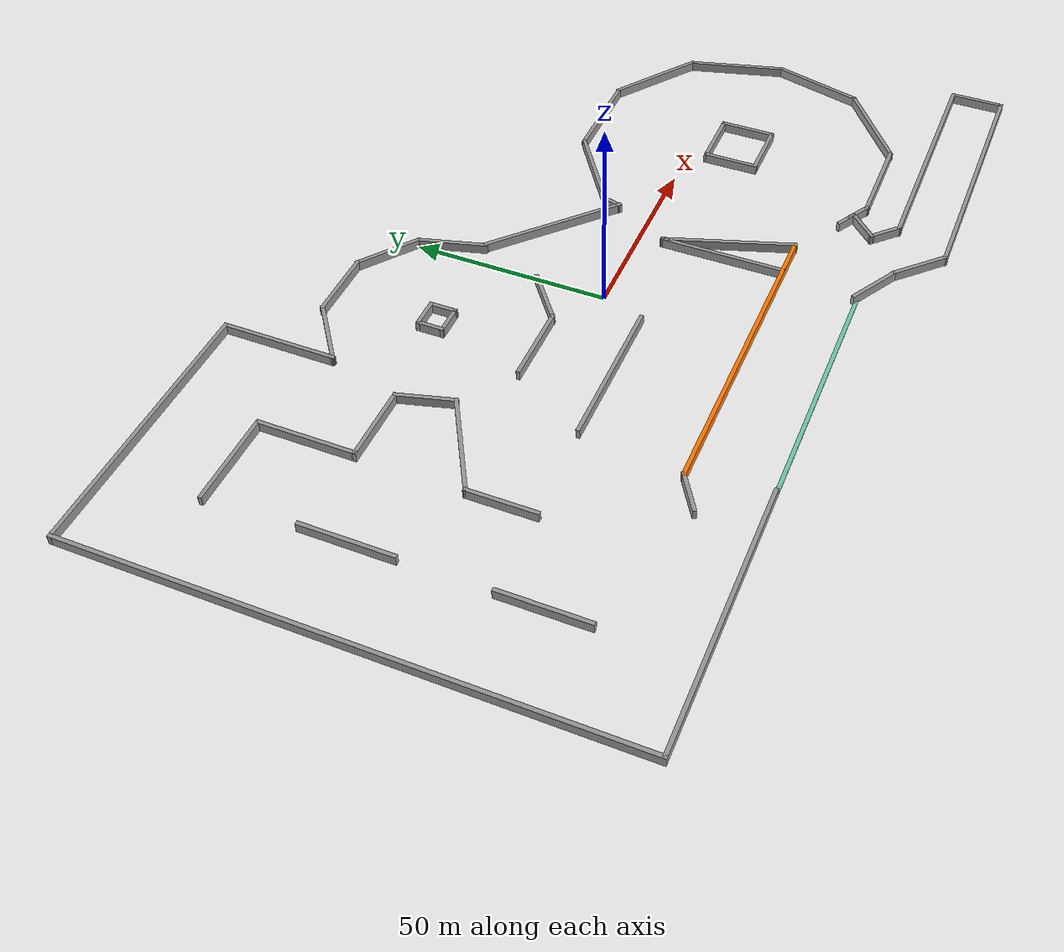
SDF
<?xml version='1.0'?>
<sdf version='1.6'>
  <model name='TestFloorPlan'>
    <pose frame=''>-0.169006 2.27396 0 0 -0 0</pose>
    <link name='Wall_102'>
      <collision name='Wall_102_Collision'>
        <geometry>
          <box>
            <size>66.6 1 0.5</size>
          </box>
        </geometry>
        <pose frame=''>0 0 0.25 0 -0 0</pose>
      </collision>
      <visual name='Wall_102_Visual'>
        <pose frame=''>0 0 0.25 0 -0 0</pose>
        <geometry>
          <box>
            <size>66.6 1 0.5</size>
          </box>
        </geometry>
        <material>
          <script>
            <uri>file://media/materials/scripts/gazebo.material</uri>
            <name>Gazebo/Grey</name>
          </script>
          <ambient>0.435294 0.796078 0.67451 1</ambient>
        </material>
        <meta>
          <layer>0</layer>
        </meta>
      </visual>
      <pose frame=''>-11.036 -59.429 0 0 -0 0</pose>
    </link>
    <link name='Wall_24'>
      <collision name='Wall_24_Collision'>
        <geometry>
          <box>
            <size>11.0669 1 2.5</size>
          </box>
        </geometry>
        <pose frame=''>0 0 1.25 0 -0 0</pose>
      </collision>
      <visual name='Wall_24_Visual'>
        <pose frame=''>0 0 1.25 0 -0 0</pose>
        <geometry>
          <box>
            <size>11.0669 1 2.5</size>
          </box>
        </geometry>
        <material>
          <script>
            <uri>file://media/materials/scripts/gazebo.material</uri>
            <name>Gazebo/Grey</name>
          </script>
          <ambient>1 1 1 1</ambient>
        </material>
        <meta>
          <layer>0</layer>
        </meta>
      </visual>
      <pose frame=''>-51.2449 -42.3683 0 0 -0 0.564552</pose>
    </link>
    <link name='Wall_25'>
      <collision name='Wall_25_Collision'>
        <geometry>
          <box>
            <size>82.0421 1 2.5</size>
          </box>
        </geometry>
        <pose frame=''>0 0 1.25 0 -0 0</pose>
      </collision>
      <visual name='Wall_25_Visual'>
        <pose frame=''>0 0 1.25 0 -0 0</pose>
        <geometry>
          <box>
            <size>82.0421 1 2.5</size>
          </box>
        </geometry>
        <material>
          <script>
            <uri>file://media/materials/scripts/gazebo.material</uri>
            <name>Gazebo/Grey</name>
          </script>
          <ambient>0.996078 0.47451 0.0196078 1</ambient>
        </material>
        <meta>
          <layer>0</layer>
        </meta>
      </visual>
      <pose frame=''>-6.41622 -39.9302 0 0 -0 -0.006292</pose>
    </link>
    <link name='Wall_27'>
      <collision name='Wall_27_Collision'>
        <geometry>
          <box>
            <size>32.3899 1 2.5</size>
          </box>
        </geometry>
        <pose frame=''>0 0 1.25 0 -0 0</pose>
      </collision>
      <visual name='Wall_27_Visual'>
        <pose frame=''>0 0 1.25 0 -0 0</pose>
        <geometry>
          <box>
            <size>32.3899 1 2.5</size>
          </box>
        </geometry>
        <material>
          <script>
            <uri>file://media/materials/scripts/gazebo.material</uri>
            <name>Gazebo/Grey</name>
          </script>
          <ambient>1 1 1 1</ambient>
        </material>
        <meta>
          <layer>0</layer>
        </meta>
      </visual>
      <pose frame=''>23.7669 -24.3601 0 0 -0 1.57079</pose>
    </link>
    <link name='Wall_29'>
      <collision name='Wall_29_Collision'>
        <geometry>
          <box>
            <size>39.8504 1 2.5</size>
          </box>
        </geometry>
        <pose frame=''>0 0 1.25 0 -0 0</pose>
      </collision>
      <visual name='Wall_29_Visual'>
        <pose frame=''>0 0 1.25 0 -0 0</pose>
        <geometry>
          <box>
            <size>39.8504 1 2.5</size>
          </box>
        </geometry>
        <material>
          <script>
            <uri>file://media/materials/scripts/gazebo.material</uri>
            <name>Gazebo/Grey</name>
          </script>
          <ambient>1 1 1 1</ambient>
        </material>
        <meta>
          <layer>0</layer>
        </meta>
      </visual>
      <pose frame=''>-24.237 -13.787 0 0 -0 0</pose>
    </link>
    <link name='Wall_32'>
      <collision name='Wall_32_Collision'>
        <geometry>
          <box>
            <size>22.3496 1 2.5</size>
          </box>
        </geometry>
        <pose frame=''>0 0 1.25 0 -0 0</pose>
      </collision>
      <visual name='Wall_32_Visual'>
        <pose frame=''>0 0 1.25 0 -0 0</pose>
        <geometry>
          <box>
            <size>22.3496 1 2.5</size>
          </box>
        </geometry>
        <material>
          <script>
            <uri>file://media/materials/scripts/gazebo.material</uri>
            <name>Gazebo/Grey</name>
          </script>
          <ambient>1 1 1 1</ambient>
        </material>
        <meta>
          <layer>0</layer>
        </meta>
      </visual>
      <pose frame=''>-89.992 -25.493 0 0 -0 -1.5708</pose>
    </link>
    <link name='Wall_35'>
      <collision name='Wall_35_Collision'>
        <geometry>
          <box>
            <size>14.8505 1 2.5</size>
          </box>
        </geometry>
        <pose frame=''>0 0 1.25 0 -0 0</pose>
      </collision>
      <visual name='Wall_35_Visual'>
        <pose frame=''>0 0 1.25 0 -0 0</pose>
        <geometry>
          <box>
            <size>14.8505 1 2.5</size>
          </box>
        </geometry>
        <material>
          <script>
            <uri>file://media/materials/scripts/gazebo.material</uri>
            <name>Gazebo/Grey</name>
          </script>
          <ambient>1 1 1 1</ambient>
        </material>
        <meta>
          <layer>0</layer>
        </meta>
      </visual>
      <pose frame=''>27.3015 -62.2685 0 0 -0 -0.523579</pose>
    </link>
    <link name='Wall_36'>
      <collision name='Wall_36_Collision'>
        <geometry>
          <box>
            <size>15.5741 1 2.5</size>
          </box>
        </geometry>
        <pose frame=''>0 0 1.25 0 -0 0</pose>
      </collision>
      <visual name='Wall_36_Visual'>
        <pose frame=''>0 0 1.25 0 -0 0</pose>
        <geometry>
          <box>
            <size>15.5741 1 2.5</size>
          </box>
        </geometry>
        <material>
          <script>
            <uri>file://media/materials/scripts/gazebo.material</uri>
            <name>Gazebo/Grey</name>
          </script>
          <ambient>1 1 1 1</ambient>
        </material>
        <meta>
          <layer>0</layer>
        </meta>
      </visual>
      <pose frame=''>38.4425 -70.893 0 0 -0 -0.787193</pose>
    </link>
    <link name='Wall_37'>
      <collision name='Wall_37_Collision'>
        <geometry>
          <box>
            <size>69.5998 1 2.5</size>
          </box>
        </geometry>
        <pose frame=''>0 0 1.25 0 -0 0</pose>
      </collision>
      <visual name='Wall_37_Visual'>
        <pose frame=''>0 0 1.25 0 -0 0</pose>
        <geometry>
          <box>
            <size>69.5998 1 2.5</size>
          </box>
        </geometry>
        <material>
          <script>
            <uri>file://media/materials/scripts/gazebo.material</uri>
            <name>Gazebo/Grey</name>
          </script>
          <ambient>1 1 1 1</ambient>
        </material>
        <meta>
          <layer>0</layer>
        </meta>
      </visual>
      <pose frame=''>77.886 -76.055 0 0 -0 0</pose>
    </link>
    <link name='Wall_38'>
      <collision name='Wall_38_Collision'>
        <geometry>
          <box>
            <size>14.35 1 2.5</size>
          </box>
        </geometry>
        <pose frame=''>0 0 1.25 0 -0 0</pose>
      </collision>
      <visual name='Wall_38_Visual'>
        <pose frame=''>0 0 1.25 0 -0 0</pose>
        <geometry>
          <box>
            <size>14.35 1 2.5</size>
          </box>
        </geometry>
        <material>
          <script>
            <uri>file://media/materials/scripts/gazebo.material</uri>
            <name>Gazebo/Grey</name>
          </script>
          <ambient>1 1 1 1</ambient>
        </material>
        <meta>
          <layer>0</layer>
        </meta>
      </visual>
      <pose frame=''>112.186 -69.38 0 0 -0 1.5708</pose>
    </link>
    <link name='Wall_39'>
      <collision name='Wall_39_Collision'>
        <geometry>
          <box>
            <size>62.85 1 2.5</size>
          </box>
        </geometry>
        <pose frame=''>0 0 1.25 0 -0 0</pose>
      </collision>
      <visual name='Wall_39_Visual'>
        <pose frame=''>0 0 1.25 0 -0 0</pose>
        <geometry>
          <box>
            <size>62.85 1 2.5</size>
          </box>
        </geometry>
        <material>
          <script>
            <uri>file://media/materials/scripts/gazebo.material</uri>
            <name>Gazebo/Grey</name>
          </script>
          <ambient>1 1 1 1</ambient>
        </material>
        <meta>
          <layer>0</layer>
        </meta>
      </visual>
      <pose frame=''>81.261 -62.705 0 0 -0 3.14159</pose>
    </link>
    <link name='Wall_40'>
      <collision name='Wall_40_Collision'>
        <geometry>
          <box>
            <size>9.09991 1 2.5</size>
          </box>
        </geometry>
        <pose frame=''>0 0 1.25 0 -0 0</pose>
      </collision>
      <visual name='Wall_40_Visual'>
        <pose frame=''>0 0 1.25 0 -0 0</pose>
        <geometry>
          <box>
            <size>9.09991 1 2.5</size>
          </box>
        </geometry>
        <material>
          <script>
            <uri>file://media/materials/scripts/gazebo.material</uri>
            <name>Gazebo/Grey</name>
          </script>
          <ambient>1 1 1 1</ambient>
        </material>
        <meta>
          <layer>0</layer>
        </meta>
      </visual>
      <pose frame=''>47.472 -59.8415 0 0 -0 2.35628</pose>
    </link>
    <link name='Wall_41'>
      <collision name='Wall_41_Collision'>
        <geometry>
          <box>
            <size>9.85015 1 2.5</size>
          </box>
        </geometry>
        <pose frame=''>0 0 1.25 0 -0 0</pose>
      </collision>
      <visual name='Wall_41_Visual'>
        <pose frame=''>0 0 1.25 0 -0 0</pose>
        <geometry>
          <box>
            <size>9.85015 1 2.5</size>
          </box>
        </geometry>
        <material>
          <script>
            <uri>file://media/materials/scripts/gazebo.material</uri>
            <name>Gazebo/Grey</name>
          </script>
          <ambient>1 1 1 1</ambient>
        </material>
        <meta>
          <layer>0</layer>
        </meta>
      </visual>
      <pose frame=''>47.737 -53.849 0 0 -0 0.785398</pose>
    </link>
    <link name='Wall_42'>
      <collision name='Wall_42_Collision'>
        <geometry>
          <box>
            <size>6.1001 1 2.5</size>
          </box>
        </geometry>
        <pose frame=''>0 0 1.25 0 -0 0</pose>
      </collision>
      <visual name='Wall_42_Visual'>
        <pose frame=''>0 0 1.25 0 -0 0</pose>
        <geometry>
          <box>
            <size>6.1001 1 2.5</size>
          </box>
        </geometry>
        <material>
          <script>
            <uri>file://media/materials/scripts/gazebo.material</uri>
            <name>Gazebo/Grey</name>
          </script>
          <ambient>1 1 1 1</ambient>
        </material>
        <meta>
          <layer>0</layer>
        </meta>
      </visual>
      <pose frame=''>48.6575 -49.445 0 0 -0 2.61802</pose>
    </link>
    <link name='Wall_44'>
      <collision name='Wall_44_Collision'>
        <geometry>
          <box>
            <size>34.1717 1 2.5</size>
          </box>
        </geometry>
        <pose frame=''>0 0 1.25 0 -0 0</pose>
      </collision>
      <visual name='Wall_44_Visual'>
        <pose frame=''>0 0 1.25 0 -0 0</pose>
        <geometry>
          <box>
            <size>34.1717 1 2.5</size>
          </box>
        </geometry>
        <material>
          <script>
            <uri>file://media/materials/scripts/gazebo.material</uri>
            <name>Gazebo/Grey</name>
          </script>
          <ambient>1 1 1 1</ambient>
        </material>
        <meta>
          <layer>0</layer>
        </meta>
      </visual>
      <pose frame=''>28.9355 -24.465 0 0 -0 -1.2539</pose>
    </link>
    <link name='Wall_49'>
      <collision name='Wall_49_Collision'>
        <geometry>
          <box>
            <size>15.85 1 2.5</size>
          </box>
        </geometry>
        <pose frame=''>0 0 1.25 0 -0 0</pose>
      </collision>
      <visual name='Wall_49_Visual'>
        <pose frame=''>0 0 1.25 0 -0 0</pose>
        <geometry>
          <box>
            <size>15.85 1 2.5</size>
          </box>
        </geometry>
        <material>
          <script>
            <uri>file://media/materials/scripts/gazebo.material</uri>
            <name>Gazebo/Grey</name>
          </script>
          <ambient>1 1 1 1</ambient>
        </material>
        <meta>
          <layer>0</layer>
        </meta>
      </visual>
      <pose frame=''>68.065 -21.082 0 0 -0 0</pose>
    </link>
    <link name='Wall_50'>
      <collision name='Wall_50_Collision'>
        <geometry>
          <box>
            <size>14.5996 1 2.5</size>
          </box>
        </geometry>
        <pose frame=''>0 0 1.25 0 -0 0</pose>
      </collision>
      <visual name='Wall_50_Visual'>
        <pose frame=''>0 0 1.25 0 -0 0</pose>
        <geometry>
          <box>
            <size>14.5996 1 2.5</size>
          </box>
        </geometry>
        <material>
          <script>
            <uri>file://media/materials/scripts/gazebo.material</uri>
            <name>Gazebo/Grey</name>
          </script>
          <ambient>1 1 1 1</ambient>
        </material>
        <meta>
          <layer>0</layer>
        </meta>
      </visual>
      <pose frame=''>75.489 -14.282 0 0 -0 1.57094</pose>
    </link>
    <link name='Wall_51'>
      <collision name='Wall_51_Collision'>
        <geometry>
          <box>
            <size>15.8501 1 2.5</size>
          </box>
        </geometry>
        <pose frame=''>0 0 1.25 0 -0 0</pose>
      </collision>
      <visual name='Wall_51_Visual'>
        <pose frame=''>0 0 1.25 0 -0 0</pose>
        <geometry>
          <box>
            <size>15.8501 1 2.5</size>
          </box>
        </geometry>
        <material>
          <script>
            <uri>file://media/materials/scripts/gazebo.material</uri>
            <name>Gazebo/Grey</name>
          </script>
          <ambient>1 1 1 1</ambient>
        </material>
        <meta>
          <layer>0</layer>
        </meta>
      </visual>
      <pose frame=''>68.063 -7.48196 0 0 -0 3.14159</pose>
    </link>
    <link name='Wall_52'>
      <collision name='Wall_52_Collision'>
        <geometry>
          <box>
            <size>14.6005 1 2.5</size>
          </box>
        </geometry>
        <pose frame=''>0 0 1.25 0 -0 0</pose>
      </collision>
      <visual name='Wall_52_Visual'>
        <pose frame=''>0 0 1.25 0 -0 0</pose>
        <geometry>
          <box>
            <size>14.6005 1 2.5</size>
          </box>
        </geometry>
        <material>
          <script>
            <uri>file://media/materials/scripts/gazebo.material</uri>
            <name>Gazebo/Grey</name>
          </script>
          <ambient>1 1 1 1</ambient>
        </material>
        <meta>
          <layer>0</layer>
        </meta>
      </visual>
      <pose frame=''>60.6265 -14.282 0 0 -0 -1.57249</pose>
    </link>
    <link name='Wall_55'>
      <collision name='Wall_55_Collision'>
        <geometry>
          <box>
            <size>5.34929 1 2.5</size>
          </box>
        </geometry>
        <pose frame=''>0 0 1.25 0 -0 0</pose>
      </collision>
      <visual name='Wall_55_Visual'>
        <pose frame=''>0 0 1.25 0 -0 0</pose>
        <geometry>
          <box>
            <size>5.34929 1 2.5</size>
          </box>
        </geometry>
        <material>
          <script>
            <uri>file://media/materials/scripts/gazebo.material</uri>
            <name>Gazebo/Grey</name>
          </script>
          <ambient>1 1 1 1</ambient>
        </material>
        <meta>
          <layer>0</layer>
        </meta>
      </visual>
      <pose frame=''>32.632 8.63454 0 0 -0 1.30892</pose>
    </link>
    <link name='Wall_56'>
      <collision name='Wall_56_Collision'>
        <geometry>
          <box>
            <size>25.9937 1 2.5</size>
          </box>
        </geometry>
        <pose frame=''>0 0 1.25 0 -0 0</pose>
      </collision>
      <visual name='Wall_56_Visual'>
        <pose frame=''>0 0 1.25 0 -0 0</pose>
        <geometry>
          <box>
            <size>25.9937 1 2.5</size>
          </box>
        </geometry>
        <material>
          <script>
            <uri>file://media/materials/scripts/gazebo.material</uri>
            <name>Gazebo/Grey</name>
          </script>
          <ambient>1 1 1 1</ambient>
        </material>
        <meta>
          <layer>0</layer>
        </meta>
      </visual>
      <pose frame=''>43.4935 17.814 0 0 -0 0.602207</pose>
    </link>
    <link name='Wall_57'>
      <collision name='Wall_57_Collision'>
        <geometry>
          <box>
            <size>26.35 1 2.5</size>
          </box>
        </geometry>
        <pose frame=''>0 0 1.25 0 -0 0</pose>
      </collision>
      <visual name='Wall_57_Visual'>
        <pose frame=''>0 0 1.25 0 -0 0</pose>
        <geometry>
          <box>
            <size>26.35 1 2.5</size>
          </box>
        </geometry>
        <material>
          <script>
            <uri>file://media/materials/scripts/gazebo.material</uri>
            <name>Gazebo/Grey</name>
          </script>
          <ambient>1 1 1 1</ambient>
        </material>
        <meta>
          <layer>0</layer>
        </meta>
      </visual>
      <pose frame=''>66.467 24.893 0 0 -0 0</pose>
    </link>
    <link name='Wall_58'>
      <collision name='Wall_58_Collision'>
        <geometry>
          <box>
            <size>26.135 1 2.5</size>
          </box>
        </geometry>
        <pose frame=''>0 0 1.25 0 -0 0</pose>
      </collision>
      <visual name='Wall_58_Visual'>
        <pose frame=''>0 0 1.25 0 -0 0</pose>
        <geometry>
          <box>
            <size>26.135 1 2.5</size>
          </box>
        </geometry>
        <material>
          <script>
            <uri>file://media/materials/scripts/gazebo.material</uri>
            <name>Gazebo/Grey</name>
          </script>
          <ambient>1 1 1 1</ambient>
        </material>
        <meta>
          <layer>0</layer>
        </meta>
      </visual>
      <pose frame=''>89.3805 17.605 0 0 -0 -0.618617</pose>
    </link>
    <link name='Wall_59'>
      <collision name='Wall_59_Collision'>
        <geometry>
          <box>
            <size>26.5994 1 2.5</size>
          </box>
        </geometry>
        <pose frame=''>0 0 1.25 0 -0 0</pose>
      </collision>
      <visual name='Wall_59_Visual'>
        <pose frame=''>0 0 1.25 0 -0 0</pose>
        <geometry>
          <box>
            <size>26.5994 1 2.5</size>
          </box>
        </geometry>
        <material>
          <script>
            <uri>file://media/materials/scripts/gazebo.material</uri>
            <name>Gazebo/Grey</name>
          </script>
          <ambient>1 1 1 1</ambient>
        </material>
        <meta>
          <layer>0</layer>
        </meta>
      </visual>
      <pose frame=''>102.932 -2.04646 0 0 -0 -1.30898</pose>
    </link>
    <link name='Wall_60'>
      <collision name='Wall_60_Collision'>
        <geometry>
          <box>
            <size>24.8507 1 2.5</size>
          </box>
        </geometry>
        <pose frame=''>0 0 1.25 0 -0 0</pose>
      </collision>
      <visual name='Wall_60_Visual'>
        <pose frame=''>0 0 1.25 0 -0 0</pose>
        <geometry>
          <box>
            <size>24.8507 1 2.5</size>
          </box>
        </geometry>
        <material>
          <script>
            <uri>file://media/materials/scripts/gazebo.material</uri>
            <name>Gazebo/Grey</name>
          </script>
          <ambient>1 1 1 1</ambient>
        </material>
        <meta>
          <layer>0</layer>
        </meta>
      </visual>
      <pose frame=''>103.159 -25.929 0 0 -0 -1.83259</pose>
    </link>
    <link name='Wall_61'>
      <collision name='Wall_61_Collision'>
        <geometry>
          <box>
            <size>26.9678 1 2.5</size>
          </box>
        </geometry>
        <pose frame=''>0 0 1.25 0 -0 0</pose>
      </collision>
      <visual name='Wall_61_Visual'>
        <pose frame=''>0 0 1.25 0 -0 0</pose>
        <geometry>
          <box>
            <size>26.9678 1 2.5</size>
          </box>
        </geometry>
        <material>
          <script>
            <uri>file://media/materials/scripts/gazebo.material</uri>
            <name>Gazebo/Grey</name>
          </script>
          <ambient>1 1 1 1</ambient>
        </material>
        <meta>
          <layer>0</layer>
        </meta>
      </visual>
      <pose frame=''>89.685 -45.2385 0 0 -0 -2.49808</pose>
    </link>
    <link name='Wall_62'>
      <collision name='Wall_62_Collision'>
        <geometry>
          <box>
            <size>25.35 1 2.5</size>
          </box>
        </geometry>
        <pose frame=''>0 0 1.25 0 -0 0</pose>
      </collision>
      <visual name='Wall_62_Visual'>
        <pose frame=''>0 0 1.25 0 -0 0</pose>
        <geometry>
          <box>
            <size>25.35 1 2.5</size>
          </box>
        </geometry>
        <material>
          <script>
            <uri>file://media/materials/scripts/gazebo.material</uri>
            <name>Gazebo/Grey</name>
          </script>
          <ambient>1 1 1 1</ambient>
        </material>
        <meta>
          <layer>0</layer>
        </meta>
      </visual>
      <pose frame=''>67.123 -53.029 0 0 -0 3.14159</pose>
    </link>
    <link name='Wall_63'>
      <collision name='Wall_63_Collision'>
        <geometry>
          <box>
            <size>7.34996 1 2.5</size>
          </box>
        </geometry>
        <pose frame=''>0 0 1.25 0 -0 0</pose>
      </collision>
      <visual name='Wall_63_Visual'>
        <pose frame=''>0 0 1.25 0 -0 0</pose>
        <geometry>
          <box>
            <size>7.34996 1 2.5</size>
          </box>
        </geometry>
        <material>
          <script>
            <uri>file://media/materials/scripts/gazebo.material</uri>
            <name>Gazebo/Grey</name>
          </script>
          <ambient>1 1 1 1</ambient>
        </material>
        <meta>
          <layer>0</layer>
        </meta>
      </visual>
      <pose frame=''>52.1985 -51.4415 0 0 -0 2.61797</pose>
    </link>
    <link name='Wall_64'>
      <collision name='Wall_64_Collision'>
        <geometry>
          <box>
            <size>0.16 0.15 2.5</size>
          </box>
        </geometry>
        <pose frame=''>0 0 1.25 0 -0 0</pose>
      </collision>
      <visual name='Wall_64_Visual'>
        <pose frame=''>0 0 1.25 0 -0 0</pose>
        <geometry>
          <box>
            <size>0.16 0.15 2.5</size>
          </box>
        </geometry>
        <material>
          <script>
            <uri>file://media/materials/scripts/gazebo.material</uri>
            <name>Gazebo/Grey</name>
          </script>
          <ambient>1 1 1 1</ambient>
        </material>
        <meta>
          <layer>0</layer>
        </meta>
      </visual>
      <pose frame=''>49.454 -49.8537 0 0 -0 0.045091</pose>
    </link>
    <link name='Wall_70'>
      <collision name='Wall_70_Collision'>
        <geometry>
          <box>
            <size>23.5999 1 2.5</size>
          </box>
        </geometry>
        <pose frame=''>0 0 1.25 0 -0 0</pose>
      </collision>
      <visual name='Wall_70_Visual'>
        <pose frame=''>0 0 1.25 0 -0 0</pose>
        <geometry>
          <box>
            <size>23.5999 1 2.5</size>
          </box>
        </geometry>
        <material>
          <script>
            <uri>file://media/materials/scripts/gazebo.material</uri>
            <name>Gazebo/Grey</name>
          </script>
          <ambient>1 1 1 1</ambient>
        </material>
        <meta>
          <layer>0</layer>
        </meta>
      </visual>
      <pose frame=''>-90.018 19.021 0 0 -0 -1.5708</pose>
    </link>
    <link name='Wall_72'>
      <collision name='Wall_72_Collision'>
        <geometry>
          <box>
            <size>20.6 1 2.5</size>
          </box>
        </geometry>
        <pose frame=''>0 0 1.25 0 -0 0</pose>
      </collision>
      <visual name='Wall_72_Visual'>
        <pose frame=''>0 0 1.25 0 -0 0</pose>
        <geometry>
          <box>
            <size>20.6 1 2.5</size>
          </box>
        </geometry>
        <material>
          <script>
            <uri>file://media/materials/scripts/gazebo.material</uri>
            <name>Gazebo/Grey</name>
          </script>
          <ambient>1 1 1 1</ambient>
        </material>
        <meta>
          <layer>0</layer>
        </meta>
      </visual>
      <pose frame=''>-22.357 5.82504 0 0 -0 0</pose>
    </link>
    <link name='Wall_73'>
      <collision name='Wall_73_Collision'>
        <geometry>
          <box>
            <size>15.7854 1 2.5</size>
          </box>
        </geometry>
        <pose frame=''>0 0 1.25 0 -0 0</pose>
      </collision>
      <visual name='Wall_73_Visual'>
        <pose frame=''>0 0 1.25 0 -0 0</pose>
        <geometry>
          <box>
            <size>15.7854 1 2.5</size>
          </box>
        </geometry>
        <material>
          <script>
            <uri>file://media/materials/scripts/gazebo.material</uri>
            <name>Gazebo/Grey</name>
          </script>
          <ambient>1 1 1 1</ambient>
        </material>
        <meta>
          <layer>0</layer>
        </meta>
      </visual>
      <pose frame=''>-6.75299 10.404 0 0 -0 0.66796</pose>
    </link>
    <link name='Wall_75'>
      <collision name='Wall_75_Collision'>
        <geometry>
          <box>
            <size>38.0062 1 2.5</size>
          </box>
        </geometry>
        <pose frame=''>0 0 1.25 0 -0 0</pose>
      </collision>
      <visual name='Wall_75_Visual'>
        <pose frame=''>0 0 1.25 0 -0 0</pose>
        <geometry>
          <box>
            <size>38.0062 1 2.5</size>
          </box>
        </geometry>
        <material>
          <script>
            <uri>file://media/materials/scripts/gazebo.material</uri>
            <name>Gazebo/Grey</name>
          </script>
          <ambient>1 1 1 1</ambient>
        </material>
        <meta>
          <layer>0</layer>
        </meta>
      </visual>
      <pose frame=''>18.72 18.992 0 0 -0 -0.750118</pose>
    </link>
    <link name='Wall_77'>
      <collision name='Wall_77_Collision'>
        <geometry>
          <box>
            <size>136.691 1 2.5</size>
          </box>
        </geometry>
        <pose frame=''>0 0 1.25 0 -0 0</pose>
      </collision>
      <visual name='Wall_77_Visual'>
        <pose frame=''>0 0 1.25 0 -0 0</pose>
        <geometry>
          <box>
            <size>136.691 1 2.5</size>
          </box>
        </geometry>
        <material>
          <script>
            <uri>file://media/materials/scripts/gazebo.material</uri>
            <name>Gazebo/Grey</name>
          </script>
          <ambient>1 1 1 1</ambient>
        </material>
        <meta>
          <layer>0</layer>
        </meta>
      </visual>
      <pose frame=''>-112.186 8.41654 0 0 -0 -1.5708</pose>
    </link>
    <link name='Wall_78'>
      <collision name='Wall_78_Collision'>
        <geometry>
          <box>
            <size>69.35 1 2.5</size>
          </box>
        </geometry>
        <pose frame=''>0 0 1.25 0 -0 0</pose>
      </collision>
      <visual name='Wall_78_Visual'>
        <pose frame=''>0 0 1.25 0 -0 0</pose>
        <geometry>
          <box>
            <size>69.35 1 2.5</size>
          </box>
        </geometry>
        <material>
          <script>
            <uri>file://media/materials/scripts/gazebo.material</uri>
            <name>Gazebo/Grey</name>
          </script>
          <ambient>1 1 1 1</ambient>
        </material>
        <meta>
          <layer>0</layer>
        </meta>
      </visual>
      <pose frame=''>-78.011 -59.429 0 0 -0 0</pose>
    </link>
    <link name='Wall_81'>
      <collision name='Wall_81_Collision'>
        <geometry>
          <box>
            <size>24.1005 1 2.5</size>
          </box>
        </geometry>
        <pose frame=''>0 0 1.25 0 -0 0</pose>
      </collision>
      <visual name='Wall_81_Visual'>
        <pose frame=''>0 0 1.25 0 -0 0</pose>
        <geometry>
          <box>
            <size>24.1005 1 2.5</size>
          </box>
        </geometry>
        <material>
          <script>
            <uri>file://media/materials/scripts/gazebo.material</uri>
            <name>Gazebo/Grey</name>
          </script>
          <ambient>1 1 1 1</ambient>
        </material>
        <meta>
          <layer>0</layer>
        </meta>
      </visual>
      <pose frame=''>-79.882 53.074 0 0 -0 0</pose>
    </link>
    <link name='Wall_82'>
      <collision name='Wall_82_Collision'>
        <geometry>
          <box>
            <size>25.3499 1 2.5</size>
          </box>
        </geometry>
        <pose frame=''>0 0 1.25 0 -0 0</pose>
      </collision>
      <visual name='Wall_82_Visual'>
        <pose frame=''>0 0 1.25 0 -0 0</pose>
        <geometry>
          <box>
            <size>25.3499 1 2.5</size>
          </box>
        </geometry>
        <material>
          <script>
            <uri>file://media/materials/scripts/gazebo.material</uri>
            <name>Gazebo/Grey</name>
          </script>
          <ambient>1 1 1 1</ambient>
        </material>
        <meta>
          <layer>0</layer>
        </meta>
      </visual>
      <pose frame=''>-68.332 40.899 0 0 -0 -1.5708</pose>
    </link>
    <link name='Wall_83'>
      <collision name='Wall_83_Collision'>
        <geometry>
          <box>
            <size>19.8505 1 2.5</size>
          </box>
        </geometry>
        <pose frame=''>0 0 1.25 0 -0 0</pose>
      </collision>
      <visual name='Wall_83_Visual'>
        <pose frame=''>0 0 1.25 0 -0 0</pose>
        <geometry>
          <box>
            <size>19.8505 1 2.5</size>
          </box>
        </geometry>
        <material>
          <script>
            <uri>file://media/materials/scripts/gazebo.material</uri>
            <name>Gazebo/Grey</name>
          </script>
          <ambient>1 1 1 1</ambient>
        </material>
        <meta>
          <layer>0</layer>
        </meta>
      </visual>
      <pose frame=''>-58.907 28.724 0 0 -0 0</pose>
    </link>
    <link name='Wall_84'>
      <collision name='Wall_84_Collision'>
        <geometry>
          <box>
            <size>15.1001 1 2.5</size>
          </box>
        </geometry>
        <pose frame=''>0 0 1.25 0 -0 0</pose>
      </collision>
      <visual name='Wall_84_Visual'>
        <pose frame=''>0 0 1.25 0 -0 0</pose>
        <geometry>
          <box>
            <size>15.1001 1 2.5</size>
          </box>
        </geometry>
        <material>
          <script>
            <uri>file://media/materials/scripts/gazebo.material</uri>
            <name>Gazebo/Grey</name>
          </script>
          <ambient>1 1 1 1</ambient>
        </material>
        <meta>
          <layer>0</layer>
        </meta>
      </visual>
      <pose frame=''>-47.657 21.9145 0 0 -0 -1.30894</pose>
    </link>
    <link name='Wall_85'>
      <collision name='Wall_85_Collision'>
        <geometry>
          <box>
            <size>27.3504 1 2.5</size>
          </box>
        </geometry>
        <pose frame=''>0 0 1.25 0 -0 0</pose>
      </collision>
      <visual name='Wall_85_Visual'>
        <pose frame=''>0 0 1.25 0 -0 0</pose>
        <geometry>
          <box>
            <size>27.3504 1 2.5</size>
          </box>
        </geometry>
        <material>
          <script>
            <uri>file://media/materials/scripts/gazebo.material</uri>
            <name>Gazebo/Grey</name>
          </script>
          <ambient>1 1 1 1</ambient>
        </material>
        <meta>
          <layer>0</layer>
        </meta>
      </visual>
      <pose frame=''>-57.242 8.51754 0 0 -0 -2.618</pose>
    </link>
    <link name='Wall_86'>
      <collision name='Wall_86_Collision'>
        <geometry>
          <box>
            <size>17.8505 1 2.5</size>
          </box>
        </geometry>
        <pose frame=''>0 0 1.25 0 -0 0</pose>
      </collision>
      <visual name='Wall_86_Visual'>
        <pose frame=''>0 0 1.25 0 -0 0</pose>
        <geometry>
          <box>
            <size>17.8505 1 2.5</size>
          </box>
        </geometry>
        <material>
          <script>
            <uri>file://media/materials/scripts/gazebo.material</uri>
            <name>Gazebo/Grey</name>
          </script>
          <ambient>1 1 1 1</ambient>
        </material>
        <meta>
          <layer>0</layer>
        </meta>
      </visual>
      <pose frame=''>-68.652 -6.49496 0 0 -0 -1.5708</pose>
    </link>
    <link name='Wall_88'>
      <collision name='Wall_88_Collision'>
        <geometry>
          <box>
            <size>68.85 1 2.5</size>
          </box>
        </geometry>
        <pose frame=''>0 0 1.25 0 -0 0</pose>
      </collision>
      <visual name='Wall_88_Visual'>
        <pose frame=''>0 0 1.25 0 -0 0</pose>
        <geometry>
          <box>
            <size>68.85 1 2.5</size>
          </box>
        </geometry>
        <material>
          <script>
            <uri>file://media/materials/scripts/gazebo.material</uri>
            <name>Gazebo/Grey</name>
          </script>
          <ambient>1 1 1 1</ambient>
        </material>
        <meta>
          <layer>0</layer>
        </meta>
      </visual>
      <pose frame=''>-78.261 76.262 0 0 -0 0</pose>
    </link>
    <link name='Wall_89'>
      <collision name='Wall_89_Collision'>
        <geometry>
          <box>
            <size>29.691 1 2.5</size>
          </box>
        </geometry>
        <pose frame=''>0 0 1.25 0 -0 0</pose>
      </collision>
      <visual name='Wall_89_Visual'>
        <pose frame=''>0 0 1.25 0 -0 0</pose>
        <geometry>
          <box>
            <size>29.691 1 2.5</size>
          </box>
        </geometry>
        <material>
          <script>
            <uri>file://media/materials/scripts/gazebo.material</uri>
            <name>Gazebo/Grey</name>
          </script>
          <ambient>1 1 1 1</ambient>
        </material>
        <meta>
          <layer>0</layer>
        </meta>
      </visual>
      <pose frame=''>-44.336 61.9165 0 0 -0 -1.5708</pose>
    </link>
    <link name='Wall_91'>
      <collision name='Wall_91_Collision'>
        <geometry>
          <box>
            <size>18.5128 1 2.5</size>
          </box>
        </geometry>
        <pose frame=''>0 0 1.25 0 -0 0</pose>
      </collision>
      <visual name='Wall_91_Visual'>
        <pose frame=''>0 0 1.25 0 -0 0</pose>
        <geometry>
          <box>
            <size>18.5128 1 2.5</size>
          </box>
        </geometry>
        <material>
          <script>
            <uri>file://media/materials/scripts/gazebo.material</uri>
            <name>Gazebo/Grey</name>
          </script>
          <ambient>1 1 1 1</ambient>
        </material>
        <meta>
          <layer>0</layer>
        </meta>
      </visual>
      <pose frame=''>-37.325 52.817 0 0 -0 0.642382</pose>
    </link>
    <link name='Wall_92'>
      <collision name='Wall_92_Collision'>
        <geometry>
          <box>
            <size>18.35 1 2.5</size>
          </box>
        </geometry>
        <pose frame=''>0 0 1.25 0 -0 0</pose>
      </collision>
      <visual name='Wall_92_Visual'>
        <pose frame=''>0 0 1.25 0 -0 0</pose>
        <geometry>
          <box>
            <size>18.35 1 2.5</size>
          </box>
        </geometry>
        <material>
          <script>
            <uri>file://media/materials/scripts/gazebo.material</uri>
            <name>Gazebo/Grey</name>
          </script>
          <ambient>1 1 1 1</ambient>
        </material>
        <meta>
          <layer>0</layer>
        </meta>
      </visual>
      <pose frame=''>-21.639 58.063 0 0 -0 0</pose>
    </link>
    <link name='Wall_93'>
      <collision name='Wall_93_Collision'>
        <geometry>
          <box>
            <size>17.7518 1 2.5</size>
          </box>
        </geometry>
        <pose frame=''>0 0 1.25 0 -0 0</pose>
      </collision>
      <visual name='Wall_93_Visual'>
        <pose frame=''>0 0 1.25 0 -0 0</pose>
        <geometry>
          <box>
            <size>17.7518 1 2.5</size>
          </box>
        </geometry>
        <material>
          <script>
            <uri>file://media/materials/scripts/gazebo.material</uri>
            <name>Gazebo/Grey</name>
          </script>
          <ambient>1 1 1 1</ambient>
        </material>
        <meta>
          <layer>0</layer>
        </meta>
      </visual>
      <pose frame=''>-6.28699 53.006 0 0 -0 -0.648205</pose>
    </link>
    <link name='Wall_94'>
      <collision name='Wall_94_Collision'>
        <geometry>
          <box>
            <size>18.0999 1 2.5</size>
          </box>
        </geometry>
        <pose frame=''>0 0 1.25 0 -0 0</pose>
      </collision>
      <visual name='Wall_94_Visual'>
        <pose frame=''>0 0 1.25 0 -0 0</pose>
        <geometry>
          <box>
            <size>18.0999 1 2.5</size>
          </box>
        </geometry>
        <material>
          <script>
            <uri>file://media/materials/scripts/gazebo.material</uri>
            <name>Gazebo/Grey</name>
          </script>
          <ambient>1 1 1 1</ambient>
        </material>
        <meta>
          <layer>0</layer>
        </meta>
      </visual>
      <pose frame=''>2.60301 39.6905 0 0 -0 -1.30898</pose>
    </link>
    <link name='Wall_96'>
      <collision name='Wall_96_Collision'>
        <geometry>
          <box>
            <size>7.34959 1 2.5</size>
          </box>
        </geometry>
        <pose frame=''>0 0 1.25 0 -0 0</pose>
      </collision>
      <visual name='Wall_96_Visual'>
        <pose frame=''>0 0 1.25 0 -0 0</pose>
        <geometry>
          <box>
            <size>7.34959 1 2.5</size>
          </box>
        </geometry>
        <material>
          <script>
            <uri>file://media/materials/scripts/gazebo.material</uri>
            <name>Gazebo/Grey</name>
          </script>
          <ambient>1 1 1 1</ambient>
        </material>
        <meta>
          <layer>0</layer>
        </meta>
      </visual>
      <pose frame=''>-26.3838 31.316 0 0 -0 -1.56852</pose>
    </link>
    <link name='Wall_97'>
      <collision name='Wall_97_Collision'>
        <geometry>
          <box>
            <size>7.821 1 2.5</size>
          </box>
        </geometry>
        <pose frame=''>0 0 1.25 0 -0 0</pose>
      </collision>
      <visual name='Wall_97_Visual'>
        <pose frame=''>0 0 1.25 0 -0 0</pose>
        <geometry>
          <box>
            <size>7.821 1 2.5</size>
          </box>
        </geometry>
        <material>
          <script>
            <uri>file://media/materials/scripts/gazebo.material</uri>
            <name>Gazebo/Grey</name>
          </script>
          <ambient>1 1 1 1</ambient>
        </material>
        <meta>
          <layer>0</layer>
        </meta>
      </visual>
      <pose frame=''>-22.9809 28.141 0 0 -0 0</pose>
    </link>
    <link name='Wall_98'>
      <collision name='Wall_98_Collision'>
        <geometry>
          <box>
            <size>7.35 1 2.5</size>
          </box>
        </geometry>
        <pose frame=''>0 0 1.25 0 -0 0</pose>
      </collision>
      <visual name='Wall_98_Visual'>
        <pose frame=''>0 0 1.25 0 -0 0</pose>
        <geometry>
          <box>
            <size>7.35 1 2.5</size>
          </box>
        </geometry>
        <material>
          <script>
            <uri>file://media/materials/scripts/gazebo.material</uri>
            <name>Gazebo/Grey</name>
          </script>
          <ambient>1 1 1 1</ambient>
        </material>
        <meta>
          <layer>0</layer>
        </meta>
      </visual>
      <pose frame=''>-19.5628 31.316 0 0 -0 1.57307</pose>
    </link>
    <link name='Wall_99'>
      <collision name='Wall_99_Collision'>
        <geometry>
          <box>
            <size>7.8357 1 2.5</size>
          </box>
        </geometry>
        <pose frame=''>0 0 1.25 0 -0 0</pose>
      </collision>
      <visual name='Wall_99_Visual'>
        <pose frame=''>0 0 1.25 0 -0 0</pose>
        <geometry>
          <box>
            <size>7.8357 1 2.5</size>
          </box>
        </geometry>
        <material>
          <script>
            <uri>file://media/materials/scripts/gazebo.material</uri>
            <name>Gazebo/Grey</name>
          </script>
          <ambient>1 1 1 1</ambient>
        </material>
        <meta>
          <layer>0</layer>
        </meta>
      </visual>
      <pose frame=''>-22.988 34.4835 0 0 -0 -3.1394</pose>
    </link>
    <static>1</static>
  </model>
</sdf>
